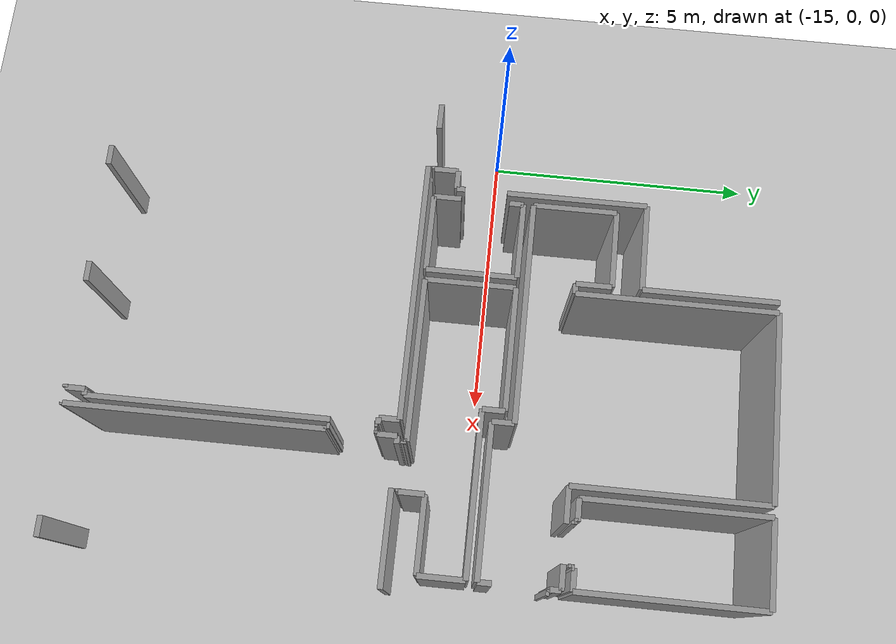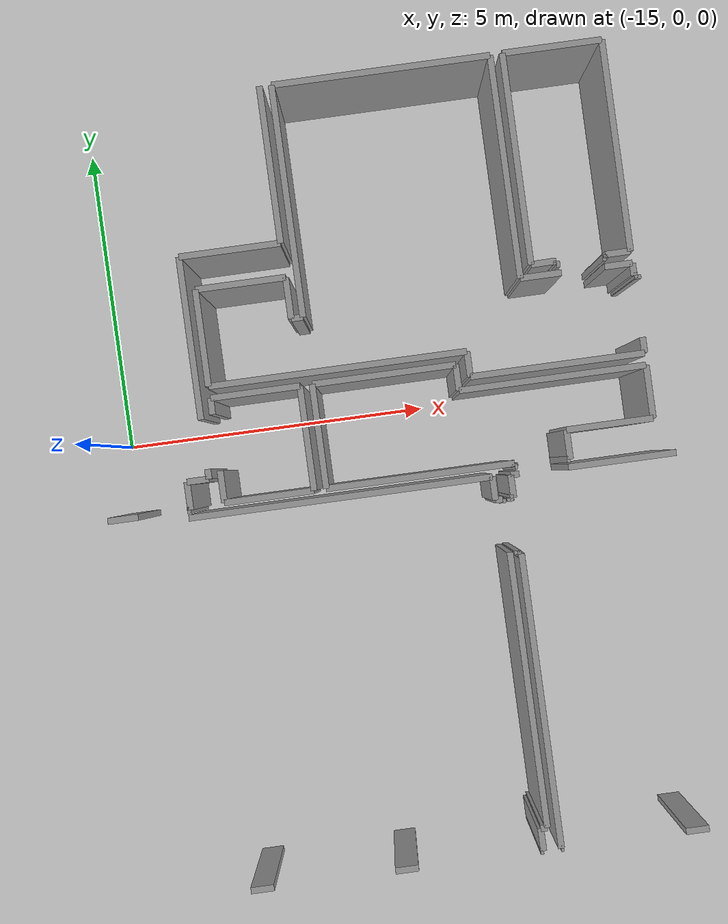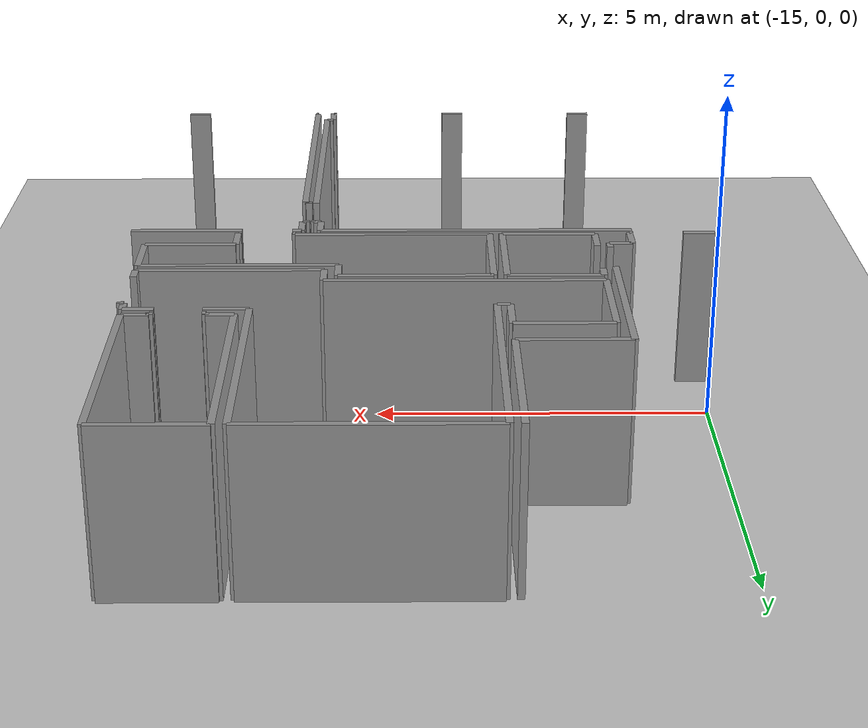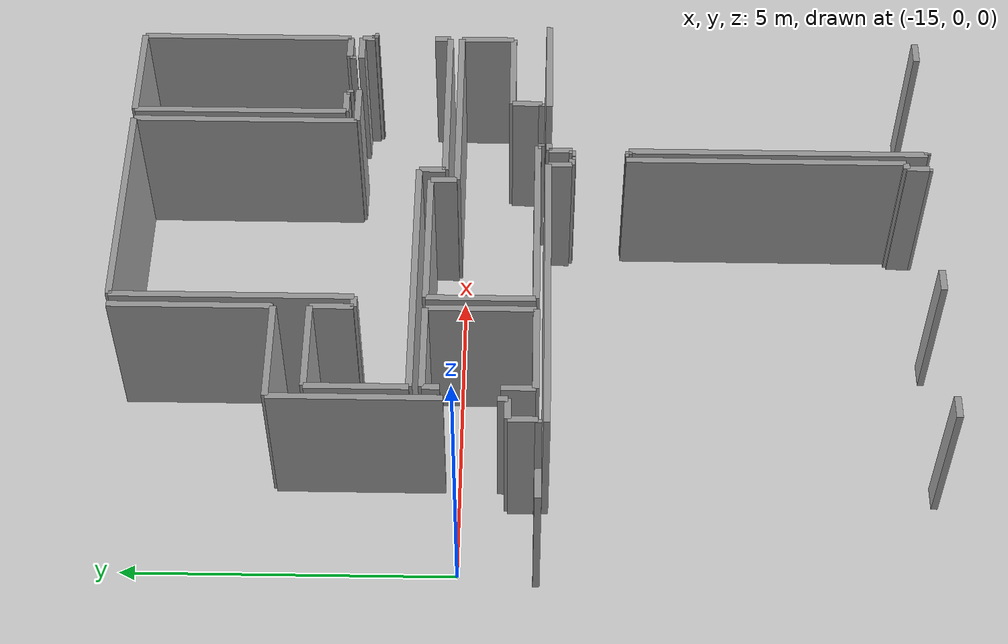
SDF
<sdf version="1.6">
 <world name="default">
  <model name="ground_plane">
   <static>1</static>
   <link name="link">
    <collision name="collision">
     <geometry><plane><normal>0 0 1</normal><size>100 100</size></plane></geometry>
     <surface><friction><ode><mu>100</mu><mu2>50</mu2></ode></friction></surface>
    </collision>
    <visual name="visual">
     <cast_shadows>0</cast_shadows>
     <geometry><plane><normal>0 0 1</normal><size>100 100</size></plane></geometry>
     <material>
      <script><uri>file://media/materials/scripts/gazebo.material</uri><name>Gazebo/Grey</name></script>
     </material>
    </visual>
   </link>
  </model>
  <model name="0510025537_Layout1_PLAN1">
   <static>1</static>
   <link name="Wall_47">
    <collision name="Wall_47_Collision">
     <geometry><box><size>4.76253415518 0.1 2.5</size></box></geometry>
     <pose>2.38126707759 0 1.25 0 0 0</pose>
    </collision>
    <visual name="Wall_47_Visual">
     <pose>2.38126707759 0 1.25 0 0 0</pose>
     <geometry><box><size>4.76253415518 0.1 2.5</size></box></geometry>
     <material>
      <script><uri>file://media/materials/scripts/gazebo.material</uri><name>Gazebo/Grey</name></script>
      <ambient>1 1 1 1</ambient>
     </material>
    </visual>
    <pose>6.46622609138 -6.76220372371 0 0 0 0.0</pose>
   </link>
   <link name="Wall_48">
    <collision name="Wall_48_Collision">
     <geometry><box><size>0.365126771303 0.1 2.5</size></box></geometry>
     <pose>0.182563385652 0 1.25 0 0 0</pose>
    </collision>
    <visual name="Wall_48_Visual">
     <pose>0.182563385652 0 1.25 0 0 0</pose>
     <geometry><box><size>0.365126771303 0.1 2.5</size></box></geometry>
     <material>
      <script><uri>file://media/materials/scripts/gazebo.material</uri><name>Gazebo/Grey</name></script>
      <ambient>1 1 1 1</ambient>
     </material>
    </visual>
    <pose>11.2287602466 -6.76220372371 0 0 0 -1.57079632679</pose>
   </link>
   <link name="Wall_49">
    <collision name="Wall_49_Collision">
     <geometry><box><size>0.112092520811 0.1 2.5</size></box></geometry>
     <pose>0.0560462604054 0 1.25 0 0 0</pose>
    </collision>
    <visual name="Wall_49_Visual">
     <pose>0.0560462604054 0 1.25 0 0 0</pose>
     <geometry><box><size>0.112092520811 0.1 2.5</size></box></geometry>
     <material>
      <script><uri>file://media/materials/scripts/gazebo.material</uri><name>Gazebo/Grey</name></script>
      <ambient>1 1 1 1</ambient>
     </material>
    </visual>
    <pose>11.2287602466 -7.12733049501 0 0 0 0.0</pose>
   </link>
   <link name="Wall_50">
    <collision name="Wall_50_Collision">
     <geometry><box><size>0.0612569104658 0.1 2.5</size></box></geometry>
     <pose>0.0306284552329 0 1.25 0 0 0</pose>
    </collision>
    <visual name="Wall_50_Visual">
     <pose>0.0306284552329 0 1.25 0 0 0</pose>
     <geometry><box><size>0.0612569104658 0.1 2.5</size></box></geometry>
     <material>
      <script><uri>file://media/materials/scripts/gazebo.material</uri><name>Gazebo/Grey</name></script>
      <ambient>1 1 1 1</ambient>
     </material>
    </visual>
    <pose>11.3408527674 -7.12733049501 0 0 0 -1.57079632679</pose>
   </link>
   <link name="Wall_51">
    <collision name="Wall_51_Collision">
     <geometry><box><size>4.32026434517 0.1 2.5</size></box></geometry>
     <pose>2.16013217259 0 1.25 0 0 0</pose>
    </collision>
    <visual name="Wall_51_Visual">
     <pose>2.16013217259 0 1.25 0 0 0</pose>
     <geometry><box><size>4.32026434517 0.1 2.5</size></box></geometry>
     <material>
      <script><uri>file://media/materials/scripts/gazebo.material</uri><name>Gazebo/Grey</name></script>
      <ambient>1 1 1 1</ambient>
     </material>
    </visual>
    <pose>11.3408527674 -7.96039905954 0 0 0 -1.57079632679</pose>
   </link>
   <link name="Wall_52">
    <collision name="Wall_52_Collision">
     <geometry><box><size>0.106373514647 0.1 2.5</size></box></geometry>
     <pose>0.0531867573235 0 1.25 0 0 0</pose>
    </collision>
    <visual name="Wall_52_Visual">
     <pose>0.0531867573235 0 1.25 0 0 0</pose>
     <geometry><box><size>0.106373514647 0.1 2.5</size></box></geometry>
     <material>
      <script><uri>file://media/materials/scripts/gazebo.material</uri><name>Gazebo/Grey</name></script>
      <ambient>1 1 1 1</ambient>
     </material>
    </visual>
    <pose>11.3408527674 -12.2806634047 0 0 0 3.14159265359</pose>
   </link>
   <link name="Wall_53">
    <collision name="Wall_53_Collision">
     <geometry><box><size>0.350384444303 0.1 2.5</size></box></geometry>
     <pose>0.175192222152 0 1.25 0 0 0</pose>
    </collision>
    <visual name="Wall_53_Visual">
     <pose>0.175192222152 0 1.25 0 0 0</pose>
     <geometry><box><size>0.350384444303 0.1 2.5</size></box></geometry>
     <material>
      <script><uri>file://media/materials/scripts/gazebo.material</uri><name>Gazebo/Grey</name></script>
      <ambient>1 1 1 1</ambient>
     </material>
    </visual>
    <pose>11.2344792527 -12.2806634047 0 0 0 -1.57079632679</pose>
   </link>
   <link name="Wall_54">
    <collision name="Wall_54_Collision">
     <geometry><box><size>0.0486750969054 0.1 2.5</size></box></geometry>
     <pose>0.0243375484527 0 1.25 0 0 0</pose>
    </collision>
    <visual name="Wall_54_Visual">
     <pose>0.0243375484527 0 1.25 0 0 0</pose>
     <geometry><box><size>0.0486750969054 0.1 2.5</size></box></geometry>
     <material>
      <script><uri>file://media/materials/scripts/gazebo.material</uri><name>Gazebo/Grey</name></script>
      <ambient>1 1 1 1</ambient>
     </material>
    </visual>
    <pose>11.2344792527 -12.631047849 0 0 0 3.14159265359</pose>
   </link>
   <link name="Wall_55">
    <collision name="Wall_55_Collision">
     <geometry><box><size>0.365444493868 0.1 2.5</size></box></geometry>
     <pose>0.182722246934 0 1.25 0 0 0</pose>
    </collision>
    <visual name="Wall_55_Visual">
     <pose>0.182722246934 0 1.25 0 0 0</pose>
     <geometry><box><size>0.365444493868 0.1 2.5</size></box></geometry>
     <material>
      <script><uri>file://media/materials/scripts/gazebo.material</uri><name>Gazebo/Grey</name></script>
      <ambient>1 1 1 1</ambient>
     </material>
    </visual>
    <pose>9.27451229586 -12.631047849 0 0 0 3.14159265359</pose>
   </link>
   <link name="Wall_56">
    <collision name="Wall_56_Collision">
     <geometry><box><size>0.36353815848 0.1 2.5</size></box></geometry>
     <pose>0.18176907924 0 1.25 0 0 0</pose>
    </collision>
    <visual name="Wall_56_Visual">
     <pose>0.18176907924 0 1.25 0 0 0</pose>
     <geometry><box><size>0.36353815848 0.1 2.5</size></box></geometry>
     <material>
      <script><uri>file://media/materials/scripts/gazebo.material</uri><name>Gazebo/Grey</name></script>
      <ambient>1 1 1 1</ambient>
     </material>
    </visual>
    <pose>7.0048929275 -12.631047849 0 0 0 3.14159265359</pose>
   </link>
   <link name="Wall_58">
    <collision name="Wall_58_Collision">
     <geometry><box><size>1.40223676686 0.1 2.5</size></box></geometry>
     <pose>0.701118383428 0 1.25 0 0 0</pose>
    </collision>
    <visual name="Wall_58_Visual">
     <pose>0.701118383428 0 1.25 0 0 0</pose>
     <geometry><box><size>1.40223676686 0.1 2.5</size></box></geometry>
     <material>
      <script><uri>file://media/materials/scripts/gazebo.material</uri><name>Gazebo/Grey</name></script>
      <ambient>1 1 1 1</ambient>
     </material>
    </visual>
    <pose>7.05051788778 -4.9597000699 0 0 0 0.0</pose>
   </link>
   <link name="Wall_59">
    <collision name="Wall_59_Collision">
     <geometry><box><size>1.64084641291 0.1 2.5</size></box></geometry>
     <pose>0.820423206456 0 1.25 0 0 0</pose>
    </collision>
    <visual name="Wall_59_Visual">
     <pose>0.820423206456 0 1.25 0 0 0</pose>
     <geometry><box><size>1.64084641291 0.1 2.5</size></box></geometry>
     <material>
      <script><uri>file://media/materials/scripts/gazebo.material</uri><name>Gazebo/Grey</name></script>
      <ambient>1 1 1 1</ambient>
     </material>
    </visual>
    <pose>8.45275465464 -4.9597000699 0 0 0 -1.57079632679</pose>
   </link>
   <link name="Wall_60">
    <collision name="Wall_60_Collision">
     <geometry><box><size>1.40617652666 0.1 2.5</size></box></geometry>
     <pose>0.703088263328 0 1.25 0 0 0</pose>
    </collision>
    <visual name="Wall_60_Visual">
     <pose>0.703088263328 0 1.25 0 0 0</pose>
     <geometry><box><size>1.40617652666 0.1 2.5</size></box></geometry>
     <material>
      <script><uri>file://media/materials/scripts/gazebo.material</uri><name>Gazebo/Grey</name></script>
      <ambient>1 1 1 1</ambient>
     </material>
    </visual>
    <pose>8.45275465464 -6.60054648281 0 0 0 3.14159265359</pose>
   </link>
   <link name="Wall_61">
    <collision name="Wall_61_Collision">
     <geometry><box><size>0.503590264981 0.1 2.5</size></box></geometry>
     <pose>0.25179513249 0 1.25 0 0 0</pose>
    </collision>
    <visual name="Wall_61_Visual">
     <pose>0.25179513249 0 1.25 0 0 0</pose>
     <geometry><box><size>0.503590264981 0.1 2.5</size></box></geometry>
     <material>
      <script><uri>file://media/materials/scripts/gazebo.material</uri><name>Gazebo/Grey</name></script>
      <ambient>1 1 1 1</ambient>
     </material>
    </visual>
    <pose>7.04657812798 -6.60054648281 0 0 0 1.57079632679</pose>
   </link>
   <link name="Wall_62">
    <collision name="Wall_62_Collision">
     <geometry><box><size>0.256114691165 0.1 2.5</size></box></geometry>
     <pose>0.128057345582 0 1.25 0 0 0</pose>
    </collision>
    <visual name="Wall_62_Visual">
     <pose>0.128057345582 0 1.25 0 0 0</pose>
     <geometry><box><size>0.256114691165 0.1 2.5</size></box></geometry>
     <material>
      <script><uri>file://media/materials/scripts/gazebo.material</uri><name>Gazebo/Grey</name></script>
      <ambient>1 1 1 1</ambient>
     </material>
    </visual>
    <pose>7.04657812798 -5.21578445701 0 0 0 1.55541292501</pose>
   </link>
   <link name="Wall_70">
    <collision name="Wall_70_Collision">
     <geometry><box><size>2.46053885747 0.1 2.5</size></box></geometry>
     <pose>1.23026942873 0 1.25 0 0 0</pose>
    </collision>
    <visual name="Wall_70_Visual">
     <pose>1.23026942873 0 1.25 0 0 0</pose>
     <geometry><box><size>2.46053885747 0.1 2.5</size></box></geometry>
     <material>
      <script><uri>file://media/materials/scripts/gazebo.material</uri><name>Gazebo/Grey</name></script>
      <ambient>1 1 1 1</ambient>
     </material>
    </visual>
    <pose>8.45485162356 -0.258422825189 0 0 0 -1.57079632679</pose>
   </link>
   <link name="Wall_71">
    <collision name="Wall_71_Collision">
     <geometry><box><size>1.59744551058 0.1 2.5</size></box></geometry>
     <pose>0.79872275529 0 1.25 0 0 0</pose>
    </collision>
    <visual name="Wall_71_Visual">
     <pose>0.79872275529 0 1.25 0 0 0</pose>
     <geometry><box><size>1.59744551058 0.1 2.5</size></box></geometry>
     <material>
      <script><uri>file://media/materials/scripts/gazebo.material</uri><name>Gazebo/Grey</name></script>
      <ambient>1 1 1 1</ambient>
     </material>
    </visual>
    <pose>8.45485162356 -2.71896168266 0 0 0 3.14159265359</pose>
   </link>
   <link name="Wall_72">
    <collision name="Wall_72_Collision">
     <geometry><box><size>2.55413992502 0.1 2.5</size></box></geometry>
     <pose>1.27706996251 0 1.25 0 0 0</pose>
    </collision>
    <visual name="Wall_72_Visual">
     <pose>1.27706996251 0 1.25 0 0 0</pose>
     <geometry><box><size>2.55413992502 0.1 2.5</size></box></geometry>
     <material>
      <script><uri>file://media/materials/scripts/gazebo.material</uri><name>Gazebo/Grey</name></script>
      <ambient>1 1 1 1</ambient>
     </material>
    </visual>
    <pose>6.85740611298 -2.71896168266 0 0 0 -1.57079632679</pose>
   </link>
   <link name="Wall_73">
    <collision name="Wall_73_Collision">
     <geometry><box><size>0.153650632268 0.1 2.5</size></box></geometry>
     <pose>0.076825316134 0 1.25 0 0 0</pose>
    </collision>
    <visual name="Wall_73_Visual">
     <pose>0.076825316134 0 1.25 0 0 0</pose>
     <geometry><box><size>0.153650632268 0.1 2.5</size></box></geometry>
     <material>
      <script><uri>file://media/materials/scripts/gazebo.material</uri><name>Gazebo/Grey</name></script>
      <ambient>1 1 1 1</ambient>
     </material>
    </visual>
    <pose>6.85740611298 -6.04789985385 0 0 0 -1.57079632679</pose>
   </link>
   <link name="Wall_74">
    <collision name="Wall_74_Collision">
     <geometry><box><size>0.346762407066 0.1 2.5</size></box></geometry>
     <pose>0.173381203533 0 1.25 0 0 0</pose>
    </collision>
    <visual name="Wall_74_Visual">
     <pose>0.173381203533 0 1.25 0 0 0</pose>
     <geometry><box><size>0.346762407066 0.1 2.5</size></box></geometry>
     <material>
      <script><uri>file://media/materials/scripts/gazebo.material</uri><name>Gazebo/Grey</name></script>
      <ambient>1 1 1 1</ambient>
     </material>
    </visual>
    <pose>6.85740611298 -6.20155048612 0 0 0 3.14159265359</pose>
   </link>
   <link name="Wall_75">
    <collision name="Wall_75_Collision">
     <geometry><box><size>0.439982207536 0.1 2.5</size></box></geometry>
     <pose>0.219991103768 0 1.25 0 0 0</pose>
    </collision>
    <visual name="Wall_75_Visual">
     <pose>0.219991103768 0 1.25 0 0 0</pose>
     <geometry><box><size>0.439982207536 0.1 2.5</size></box></geometry>
     <material>
      <script><uri>file://media/materials/scripts/gazebo.material</uri><name>Gazebo/Grey</name></script>
      <ambient>1 1 1 1</ambient>
     </material>
    </visual>
    <pose>6.51064370592 -6.20155048612 0 0 0 -1.57079632679</pose>
   </link>
   <link name="Wall_76">
    <collision name="Wall_76_Collision">
     <geometry><box><size>0.0542670140433 0.1 2.5</size></box></geometry>
     <pose>0.0271335070217 0 1.25 0 0 0</pose>
    </collision>
    <visual name="Wall_76_Visual">
     <pose>0.0271335070217 0 1.25 0 0 0</pose>
     <geometry><box><size>0.0542670140433 0.1 2.5</size></box></geometry>
     <material>
      <script><uri>file://media/materials/scripts/gazebo.material</uri><name>Gazebo/Grey</name></script>
      <ambient>1 1 1 1</ambient>
     </material>
    </visual>
    <pose>6.51064370592 -6.64153269365 0 0 0 3.14159265359</pose>
   </link>
   <link name="Wall_77">
    <collision name="Wall_77_Collision">
     <geometry><box><size>0.479062082989 0.1 2.5</size></box></geometry>
     <pose>0.239531041495 0 1.25 0 0 0</pose>
    </collision>
    <visual name="Wall_77_Visual">
     <pose>0.239531041495 0 1.25 0 0 0</pose>
     <geometry><box><size>0.479062082989 0.1 2.5</size></box></geometry>
     <material>
      <script><uri>file://media/materials/scripts/gazebo.material</uri><name>Gazebo/Grey</name></script>
      <ambient>1 1 1 1</ambient>
     </material>
    </visual>
    <pose>5.68780580797 -6.64153269365 0 0 0 3.14159265359</pose>
   </link>
   <link name="Wall_91">
    <collision name="Wall_91_Collision">
     <geometry><box><size>4.61911418949 0.1 2.5</size></box></geometry>
     <pose>2.30955709474 0 1.25 0 0 0</pose>
    </collision>
    <visual name="Wall_91_Visual">
     <pose>2.30955709474 0 1.25 0 0 0</pose>
     <geometry><box><size>4.61911418949 0.1 2.5</size></box></geometry>
     <material>
      <script><uri>file://media/materials/scripts/gazebo.material</uri><name>Gazebo/Grey</name></script>
      <ambient>1 1 1 1</ambient>
     </material>
    </visual>
    <pose>11.5152824554 -12.6279977124 0 0 0 1.57079632679</pose>
   </link>
   <link name="Wall_92">
    <collision name="Wall_92_Collision">
     <geometry><box><size>0.0587786744615 0.1 2.5</size></box></geometry>
     <pose>0.0293893372307 0 1.25 0 0 0</pose>
    </collision>
    <visual name="Wall_92_Visual">
     <pose>0.0293893372307 0 1.25 0 0 0</pose>
     <geometry><box><size>0.0587786744615 0.1 2.5</size></box></geometry>
     <material>
      <script><uri>file://media/materials/scripts/gazebo.material</uri><name>Gazebo/Grey</name></script>
      <ambient>1 1 1 1</ambient>
     </material>
    </visual>
    <pose>11.5152824554 -8.00888352291 0 0 0 3.14159265359</pose>
   </link>
   <link name="Wall_93">
    <collision name="Wall_93_Collision">
     <geometry><box><size>0.0582067738451 0.1 2.5</size></box></geometry>
     <pose>0.0291033869225 0 1.25 0 0 0</pose>
    </collision>
    <visual name="Wall_93_Visual">
     <pose>0.0291033869225 0 1.25 0 0 0</pose>
     <geometry><box><size>0.0582067738451 0.1 2.5</size></box></geometry>
     <material>
      <script><uri>file://media/materials/scripts/gazebo.material</uri><name>Gazebo/Grey</name></script>
      <ambient>1 1 1 1</ambient>
     </material>
    </visual>
    <pose>11.4565037809 -8.00888352291 0 0 0 1.57079632679</pose>
   </link>
   <link name="Wall_94">
    <collision name="Wall_94_Collision">
     <geometry><box><size>0.0515981445002 0.1 2.5</size></box></geometry>
     <pose>0.0257990722501 0 1.25 0 0 0</pose>
    </collision>
    <visual name="Wall_94_Visual">
     <pose>0.0257990722501 0 1.25 0 0 0</pose>
     <geometry><box><size>0.0515981445002 0.1 2.5</size></box></geometry>
     <material>
      <script><uri>file://media/materials/scripts/gazebo.material</uri><name>Gazebo/Grey</name></script>
      <ambient>1 1 1 1</ambient>
     </material>
    </visual>
    <pose>11.4565037809 -7.17988180721 0 0 0 1.57079632679</pose>
   </link>
   <link name="Wall_95">
    <collision name="Wall_95_Collision">
     <geometry><box><size>0.0583338628709 0.1 2.5</size></box></geometry>
     <pose>0.0291669314355 0 1.25 0 0 0</pose>
    </collision>
    <visual name="Wall_95_Visual">
     <pose>0.0291669314355 0 1.25 0 0 0</pose>
     <geometry><box><size>0.0583338628709 0.1 2.5</size></box></geometry>
     <material>
      <script><uri>file://media/materials/scripts/gazebo.material</uri><name>Gazebo/Grey</name></script>
      <ambient>1 1 1 1</ambient>
     </material>
    </visual>
    <pose>11.4565037809 -7.12828366271 0 0 0 0.0</pose>
   </link>
   <link name="Wall_96">
    <collision name="Wall_96_Collision">
     <geometry><box><size>0.355912816928 0.1 2.5</size></box></geometry>
     <pose>0.177956408464 0 1.25 0 0 0</pose>
    </collision>
    <visual name="Wall_96_Visual">
     <pose>0.177956408464 0 1.25 0 0 0</pose>
     <geometry><box><size>0.355912816928 0.1 2.5</size></box></geometry>
     <material>
      <script><uri>file://media/materials/scripts/gazebo.material</uri><name>Gazebo/Grey</name></script>
      <ambient>1 1 1 1</ambient>
     </material>
    </visual>
    <pose>11.5148376438 -7.12828366271 0 0 0 1.57079632679</pose>
   </link>
   <link name="Wall_97">
    <collision name="Wall_97_Collision">
     <geometry><box><size>0.133888288746 0.1 2.5</size></box></geometry>
     <pose>0.0669441443731 0 1.25 0 0 0</pose>
    </collision>
    <visual name="Wall_97_Visual">
     <pose>0.0669441443731 0 1.25 0 0 0</pose>
     <geometry><box><size>0.133888288746 0.1 2.5</size></box></geometry>
     <material>
      <script><uri>file://media/materials/scripts/gazebo.material</uri><name>Gazebo/Grey</name></script>
      <ambient>1 1 1 1</ambient>
     </material>
    </visual>
    <pose>11.5148376438 -6.77237084578 0 0 0 0.0</pose>
   </link>
   <link name="Wall_98">
    <collision name="Wall_98_Collision">
     <geometry><box><size>1.69504988244 0.1 2.5</size></box></geometry>
     <pose>0.847524941221 0 1.25 0 0 0</pose>
    </collision>
    <visual name="Wall_98_Visual">
     <pose>0.847524941221 0 1.25 0 0 0</pose>
     <geometry><box><size>1.69504988244 0.1 2.5</size></box></geometry>
     <material>
      <script><uri>file://media/materials/scripts/gazebo.material</uri><name>Gazebo/Grey</name></script>
      <ambient>1 1 1 1</ambient>
     </material>
    </visual>
    <pose>12.4183770731 -6.77237084578 0 0 0 0.0</pose>
   </link>
   <link name="Wall_113">
    <collision name="Wall_113_Collision">
     <geometry><box><size>0.364872593252 0.1 2.5</size></box></geometry>
     <pose>0.182436296626 0 1.25 0 0 0</pose>
    </collision>
    <visual name="Wall_113_Visual">
     <pose>0.182436296626 0 1.25 0 0 0</pose>
     <geometry><box><size>0.364872593252 0.1 2.5</size></box></geometry>
     <material>
      <script><uri>file://media/materials/scripts/gazebo.material</uri><name>Gazebo/Grey</name></script>
      <ambient>1 1 1 1</ambient>
     </material>
    </visual>
    <pose>13.8342759103 -12.63092076 0 0 0 3.14159265359</pose>
   </link>
   <link name="Wall_114">
    <collision name="Wall_114_Collision">
     <geometry><box><size>0.0369082044918 0.1 2.5</size></box></geometry>
     <pose>0.0184541022459 0 1.25 0 0 0</pose>
    </collision>
    <visual name="Wall_114_Visual">
     <pose>0.0184541022459 0 1.25 0 0 0</pose>
     <geometry><box><size>0.0369082044918 0.1 2.5</size></box></geometry>
     <material>
      <script><uri>file://media/materials/scripts/gazebo.material</uri><name>Gazebo/Grey</name></script>
      <ambient>1 1 1 1</ambient>
     </material>
    </visual>
    <pose>11.5520747283 -12.63092076 0 0 0 3.06231185434</pose>
   </link>
   <link name="Wall_115">
    <collision name="Wall_115_Collision">
     <geometry><box><size>1.63747855373 0.1 2.5</size></box></geometry>
     <pose>0.818739276863 0 1.25 0 0 0</pose>
    </collision>
    <visual name="Wall_115_Visual">
     <pose>0.818739276863 0 1.25 0 0 0</pose>
     <geometry><box><size>1.63747855373 0.1 2.5</size></box></geometry>
     <material>
      <script><uri>file://media/materials/scripts/gazebo.material</uri><name>Gazebo/Grey</name></script>
      <ambient>1 1 1 1</ambient>
     </material>
    </visual>
    <pose>8.64459553918 -6.59565355532 0 0 0 1.57079632679</pose>
   </link>
   <link name="Wall_116">
    <collision name="Wall_116_Collision">
     <geometry><box><size>2.25360615111 0.1 2.5</size></box></geometry>
     <pose>1.12680307555 0 1.25 0 0 0</pose>
    </collision>
    <visual name="Wall_116_Visual">
     <pose>1.12680307555 0 1.25 0 0 0</pose>
     <geometry><box><size>2.25360615111 0.1 2.5</size></box></geometry>
     <material>
      <script><uri>file://media/materials/scripts/gazebo.material</uri><name>Gazebo/Grey</name></script>
      <ambient>1 1 1 1</ambient>
     </material>
    </visual>
    <pose>8.64459553918 -4.95817500159 0 0 0 0.0</pose>
   </link>
   <link name="Wall_117">
    <collision name="Wall_117_Collision">
     <geometry><box><size>0.405223358963 0.1 2.5</size></box></geometry>
     <pose>0.202611679481 0 1.25 0 0 0</pose>
    </collision>
    <visual name="Wall_117_Visual">
     <pose>0.202611679481 0 1.25 0 0 0</pose>
     <geometry><box><size>0.405223358963 0.1 2.5</size></box></geometry>
     <material>
      <script><uri>file://media/materials/scripts/gazebo.material</uri><name>Gazebo/Grey</name></script>
      <ambient>1 1 1 1</ambient>
     </material>
    </visual>
    <pose>10.8982016903 -4.95817500159 0 0 0 -1.57079632679</pose>
   </link>
   <link name="Wall_118">
    <collision name="Wall_118_Collision">
     <geometry><box><size>2.93226154922 0.1 2.5</size></box></geometry>
     <pose>1.46613077461 0 1.25 0 0 0</pose>
    </collision>
    <visual name="Wall_118_Visual">
     <pose>1.46613077461 0 1.25 0 0 0</pose>
     <geometry><box><size>2.93226154922 0.1 2.5</size></box></geometry>
     <material>
      <script><uri>file://media/materials/scripts/gazebo.material</uri><name>Gazebo/Grey</name></script>
      <ambient>1 1 1 1</ambient>
     </material>
    </visual>
    <pose>10.8982016903 -5.36339836055 0 0 0 0.0</pose>
   </link>
   <link name="Wall_119">
    <collision name="Wall_119_Collision">
     <geometry><box><size>0.83198830781 0.1 2.5</size></box></geometry>
     <pose>0.415994153905 0 1.25 0 0 0</pose>
    </collision>
    <visual name="Wall_119_Visual">
     <pose>0.415994153905 0 1.25 0 0 0</pose>
     <geometry><box><size>0.83198830781 0.1 2.5</size></box></geometry>
     <material>
      <script><uri>file://media/materials/scripts/gazebo.material</uri><name>Gazebo/Grey</name></script>
      <ambient>1 1 1 1</ambient>
     </material>
    </visual>
    <pose>13.8304632395 -5.36339836055 0 0 0 -1.57079632679</pose>
   </link>
   <link name="Wall_120">
    <collision name="Wall_120_Collision">
     <geometry><box><size>1.36233081273 0.1 2.5</size></box></geometry>
     <pose>0.681165406367 0 1.25 0 0 0</pose>
    </collision>
    <visual name="Wall_120_Visual">
     <pose>0.681165406367 0 1.25 0 0 0</pose>
     <geometry><box><size>1.36233081273 0.1 2.5</size></box></geometry>
     <material>
      <script><uri>file://media/materials/scripts/gazebo.material</uri><name>Gazebo/Grey</name></script>
      <ambient>1 1 1 1</ambient>
     </material>
    </visual>
    <pose>13.8304632395 -6.19538666836 0 0 0 3.14159265359</pose>
   </link>
   <link name="Wall_121">
    <collision name="Wall_121_Collision">
     <geometry><box><size>0.458854927877 0.1 2.5</size></box></geometry>
     <pose>0.229427463938 0 1.25 0 0 0</pose>
    </collision>
    <visual name="Wall_121_Visual">
     <pose>0.229427463938 0 1.25 0 0 0</pose>
     <geometry><box><size>0.458854927877 0.1 2.5</size></box></geometry>
     <material>
      <script><uri>file://media/materials/scripts/gazebo.material</uri><name>Gazebo/Grey</name></script>
      <ambient>1 1 1 1</ambient>
     </material>
    </visual>
    <pose>12.4681324268 -6.19538666836 0 0 0 -1.57079632679</pose>
   </link>
   <link name="Wall_122">
    <collision name="Wall_122_Collision">
     <geometry><box><size>0.053695113427 0.1 2.5</size></box></geometry>
     <pose>0.0268475567135 0 1.25 0 0 0</pose>
    </collision>
    <visual name="Wall_122_Visual">
     <pose>0.0268475567135 0 1.25 0 0 0</pose>
     <geometry><box><size>0.053695113427 0.1 2.5</size></box></geometry>
     <material>
      <script><uri>file://media/materials/scripts/gazebo.material</uri><name>Gazebo/Grey</name></script>
      <ambient>1 1 1 1</ambient>
     </material>
    </visual>
    <pose>12.4681324268 -6.65424159624 0 0 0 3.14159265359</pose>
   </link>
   <link name="Wall_123">
    <collision name="Wall_123_Collision">
     <geometry><box><size>0.0399694986338 0.1 2.5</size></box></geometry>
     <pose>0.0199847493169 0 1.25 0 0 0</pose>
    </collision>
    <visual name="Wall_123_Visual">
     <pose>0.0199847493169 0 1.25 0 0 0</pose>
     <geometry><box><size>0.0399694986338 0.1 2.5</size></box></geometry>
     <material>
      <script><uri>file://media/materials/scripts/gazebo.material</uri><name>Gazebo/Grey</name></script>
      <ambient>1 1 1 1</ambient>
     </material>
    </visual>
    <pose>11.6395119781 -6.65424159624 0 0 0 3.14159265359</pose>
   </link>
   <link name="Wall_124">
    <collision name="Wall_124_Collision">
     <geometry><box><size>0.0537586579399 0.1 2.5</size></box></geometry>
     <pose>0.0268793289699 0 1.25 0 0 0</pose>
    </collision>
    <visual name="Wall_124_Visual">
     <pose>0.0268793289699 0 1.25 0 0 0</pose>
     <geometry><box><size>0.0537586579399 0.1 2.5</size></box></geometry>
     <material>
      <script><uri>file://media/materials/scripts/gazebo.material</uri><name>Gazebo/Grey</name></script>
      <ambient>1 1 1 1</ambient>
     </material>
    </visual>
    <pose>11.5995424795 -6.65424159624 0 0 0 1.57079632679</pose>
   </link>
   <link name="Wall_125">
    <collision name="Wall_125_Collision">
     <geometry><box><size>2.95495088675 0.1 2.5</size></box></geometry>
     <pose>1.47747544338 0 1.25 0 0 0</pose>
    </collision>
    <visual name="Wall_125_Visual">
     <pose>1.47747544338 0 1.25 0 0 0</pose>
     <geometry><box><size>2.95495088675 0.1 2.5</size></box></geometry>
     <material>
      <script><uri>file://media/materials/scripts/gazebo.material</uri><name>Gazebo/Grey</name></script>
      <ambient>1 1 1 1</ambient>
     </material>
    </visual>
    <pose>11.5995424795 -6.6004829383 0 0 0 3.13995831674</pose>
   </link>
   <link name="Wall_142">
    <collision name="Wall_142_Collision">
     <geometry><box><size>3.31571455805 0.1 2.5</size></box></geometry>
     <pose>1.65785727902 0 1.25 0 0 0</pose>
    </collision>
    <visual name="Wall_142_Visual">
     <pose>1.65785727902 0 1.25 0 0 0</pose>
     <geometry><box><size>3.31571455805 0.1 2.5</size></box></geometry>
     <material>
      <script><uri>file://media/materials/scripts/gazebo.material</uri><name>Gazebo/Grey</name></script>
      <ambient>1 1 1 1</ambient>
     </material>
    </visual>
    <pose>12.2687932897 -3.57652665692 0 0 0 1.57079632679</pose>
   </link>
   <link name="Wall_143">
    <collision name="Wall_143_Collision">
     <geometry><box><size>1.5616699498 0.1 2.5</size></box></geometry>
     <pose>0.7808349749 0 1.25 0 0 0</pose>
    </collision>
    <visual name="Wall_143_Visual">
     <pose>0.7808349749 0 1.25 0 0 0</pose>
     <geometry><box><size>1.5616699498 0.1 2.5</size></box></geometry>
     <material>
      <script><uri>file://media/materials/scripts/gazebo.material</uri><name>Gazebo/Grey</name></script>
      <ambient>1 1 1 1</ambient>
     </material>
    </visual>
    <pose>12.2687932897 -0.260812098875 0 0 0 0.0</pose>
   </link>
   <link name="Wall_144">
    <collision name="Wall_144_Collision">
     <geometry><box><size>3.31495202389 0.1 2.5</size></box></geometry>
     <pose>1.65747601195 0 1.25 0 0 0</pose>
    </collision>
    <visual name="Wall_144_Visual">
     <pose>1.65747601195 0 1.25 0 0 0</pose>
     <geometry><box><size>3.31495202389 0.1 2.5</size></box></geometry>
     <material>
      <script><uri>file://media/materials/scripts/gazebo.material</uri><name>Gazebo/Grey</name></script>
      <ambient>1 1 1 1</ambient>
     </material>
    </visual>
    <pose>13.8304632395 -0.260812098875 0 0 0 -1.57079632679</pose>
   </link>
   <link name="Wall_145">
    <collision name="Wall_145_Collision">
     <geometry><box><size>0.39041748745 0.1 2.5</size></box></geometry>
     <pose>0.195208743725 0 1.25 0 0 0</pose>
    </collision>
    <visual name="Wall_145_Visual">
     <pose>0.195208743725 0 1.25 0 0 0</pose>
     <geometry><box><size>0.39041748745 0.1 2.5</size></box></geometry>
     <material>
      <script><uri>file://media/materials/scripts/gazebo.material</uri><name>Gazebo/Grey</name></script>
      <ambient>1 1 1 1</ambient>
     </material>
    </visual>
    <pose>13.8304632395 -3.57576412277 0 0 0 3.14159265359</pose>
   </link>
   <link name="Wall_146">
    <collision name="Wall_146_Collision">
     <geometry><box><size>0.0505814322933 0.1 2.5</size></box></geometry>
     <pose>0.0252907161467 0 1.25 0 0 0</pose>
    </collision>
    <visual name="Wall_146_Visual">
     <pose>0.0252907161467 0 1.25 0 0 0</pose>
     <geometry><box><size>0.0505814322933 0.1 2.5</size></box></geometry>
     <material>
      <script><uri>file://media/materials/scripts/gazebo.material</uri><name>Gazebo/Grey</name></script>
      <ambient>1 1 1 1</ambient>
     </material>
    </visual>
    <pose>13.440045752 -3.57576412277 0 0 0 -1.57079632679</pose>
   </link>
   <link name="Wall_147">
    <collision name="Wall_147_Collision">
     <geometry><box><size>0.0559827158925 0.1 2.5</size></box></geometry>
     <pose>0.0279913579462 0 1.25 0 0 0</pose>
    </collision>
    <visual name="Wall_147_Visual">
     <pose>0.0279913579462 0 1.25 0 0 0</pose>
     <geometry><box><size>0.0559827158925 0.1 2.5</size></box></geometry>
     <material>
      <script><uri>file://media/materials/scripts/gazebo.material</uri><name>Gazebo/Grey</name></script>
      <ambient>1 1 1 1</ambient>
     </material>
    </visual>
    <pose>13.440045752 -3.62634555506 0 0 0 3.14159265359</pose>
   </link>
   <link name="Wall_148">
    <collision name="Wall_148_Collision">
     <geometry><box><size>0.0546482811209 0.1 2.5</size></box></geometry>
     <pose>0.0273241405605 0 1.25 0 0 0</pose>
    </collision>
    <visual name="Wall_148_Visual">
     <pose>0.0273241405605 0 1.25 0 0 0</pose>
     <geometry><box><size>0.0546482811209 0.1 2.5</size></box></geometry>
     <material>
      <script><uri>file://media/materials/scripts/gazebo.material</uri><name>Gazebo/Grey</name></script>
      <ambient>1 1 1 1</ambient>
     </material>
    </visual>
    <pose>12.71754464 -3.62634555506 0 0 0 3.14159265359</pose>
   </link>
   <link name="Wall_149">
    <collision name="Wall_149_Collision">
     <geometry><box><size>0.0546482811209 0.1 2.5</size></box></geometry>
     <pose>0.0273241405605 0 1.25 0 0 0</pose>
    </collision>
    <visual name="Wall_149_Visual">
     <pose>0.0273241405605 0 1.25 0 0 0</pose>
     <geometry><box><size>0.0546482811209 0.1 2.5</size></box></geometry>
     <material>
      <script><uri>file://media/materials/scripts/gazebo.material</uri><name>Gazebo/Grey</name></script>
      <ambient>1 1 1 1</ambient>
     </material>
    </visual>
    <pose>12.6628963589 -3.62634555506 0 0 0 1.57079632679</pose>
   </link>
   <link name="Wall_150">
    <collision name="Wall_150_Collision">
     <geometry><box><size>0.394132657988 0.1 2.5</size></box></geometry>
     <pose>0.197066328994 0 1.25 0 0 0</pose>
    </collision>
    <visual name="Wall_150_Visual">
     <pose>0.197066328994 0 1.25 0 0 0</pose>
     <geometry><box><size>0.394132657988 0.1 2.5</size></box></geometry>
     <material>
      <script><uri>file://media/materials/scripts/gazebo.material</uri><name>Gazebo/Grey</name></script>
      <ambient>1 1 1 1</ambient>
     </material>
    </visual>
    <pose>12.6628963589 -3.57169727394 0 0 0 -3.12933915533</pose>
   </link>
   <link name="Wall_151">
    <collision name="Wall_151_Collision">
     <geometry><box><size>1.51922221516 0.1 2.5</size></box></geometry>
     <pose>0.759611107581 0 1.25 0 0 0</pose>
    </collision>
    <visual name="Wall_151_Visual">
     <pose>0.759611107581 0 1.25 0 0 0</pose>
     <geometry><box><size>1.51922221516 0.1 2.5</size></box></geometry>
     <material>
      <script><uri>file://media/materials/scripts/gazebo.material</uri><name>Gazebo/Grey</name></script>
      <ambient>1 1 1 1</ambient>
     </material>
    </visual>
    <pose>7.04193937853 -4.77567516045 0 0 0 1.57079632679</pose>
   </link>
   <link name="Wall_152">
    <collision name="Wall_152_Collision">
     <geometry><box><size>1.41799580606 0.1 2.5</size></box></geometry>
     <pose>0.708997903031 0 1.25 0 0 0</pose>
    </collision>
    <visual name="Wall_152_Visual">
     <pose>0.708997903031 0 1.25 0 0 0</pose>
     <geometry><box><size>1.41799580606 0.1 2.5</size></box></geometry>
     <material>
      <script><uri>file://media/materials/scripts/gazebo.material</uri><name>Gazebo/Grey</name></script>
      <ambient>1 1 1 1</ambient>
     </material>
    </visual>
    <pose>7.04193937853 -3.25645294529 0 0 0 0.0</pose>
   </link>
   <link name="Wall_153">
    <collision name="Wall_153_Collision">
     <geometry><box><size>0.647709220309 0.1 2.5</size></box></geometry>
     <pose>0.323854610154 0 1.25 0 0 0</pose>
    </collision>
    <visual name="Wall_153_Visual">
     <pose>0.323854610154 0 1.25 0 0 0</pose>
     <geometry><box><size>0.647709220309 0.1 2.5</size></box></geometry>
     <material>
      <script><uri>file://media/materials/scripts/gazebo.material</uri><name>Gazebo/Grey</name></script>
      <ambient>1 1 1 1</ambient>
     </material>
    </visual>
    <pose>8.4599351846 -3.25645294529 0 0 0 -1.57079632679</pose>
   </link>
   <link name="Wall_154">
    <collision name="Wall_154_Collision">
     <geometry><box><size>0.183961364936 0.1 2.5</size></box></geometry>
     <pose>0.0919806824681 0 1.25 0 0 0</pose>
    </collision>
    <visual name="Wall_154_Visual">
     <pose>0.0919806824681 0 1.25 0 0 0</pose>
     <geometry><box><size>0.183961364936 0.1 2.5</size></box></geometry>
     <material>
      <script><uri>file://media/materials/scripts/gazebo.material</uri><name>Gazebo/Grey</name></script>
      <ambient>1 1 1 1</ambient>
     </material>
    </visual>
    <pose>8.4599351846 -3.9041621656 0 0 0 0.0</pose>
   </link>
   <link name="Wall_155">
    <collision name="Wall_155_Collision">
     <geometry><box><size>3.63618860011 0.1 2.5</size></box></geometry>
     <pose>1.81809430006 0 1.25 0 0 0</pose>
    </collision>
    <visual name="Wall_155_Visual">
     <pose>1.81809430006 0 1.25 0 0 0</pose>
     <geometry><box><size>3.63618860011 0.1 2.5</size></box></geometry>
     <material>
      <script><uri>file://media/materials/scripts/gazebo.material</uri><name>Gazebo/Grey</name></script>
      <ambient>1 1 1 1</ambient>
     </material>
    </visual>
    <pose>8.64389654953 -3.9041621656 0 0 0 1.57079632679</pose>
   </link>
   <link name="Wall_156">
    <collision name="Wall_156_Collision">
     <geometry><box><size>3.43280167758 0.1 2.5</size></box></geometry>
     <pose>1.71640083879 0 1.25 0 0 0</pose>
    </collision>
    <visual name="Wall_156_Visual">
     <pose>1.71640083879 0 1.25 0 0 0</pose>
     <geometry><box><size>3.43280167758 0.1 2.5</size></box></geometry>
     <material>
      <script><uri>file://media/materials/scripts/gazebo.material</uri><name>Gazebo/Grey</name></script>
      <ambient>1 1 1 1</ambient>
     </material>
    </visual>
    <pose>8.64389654953 -0.267973565483 0 0 0 0.0</pose>
   </link>
   <link name="Wall_157">
    <collision name="Wall_157_Collision">
     <geometry><box><size>3.49492914787 0.1 2.5</size></box></geometry>
     <pose>1.74746457393 0 1.25 0 0 0</pose>
    </collision>
    <visual name="Wall_157_Visual">
     <pose>1.74746457393 0 1.25 0 0 0</pose>
     <geometry><box><size>3.49492914787 0.1 2.5</size></box></geometry>
     <material>
      <script><uri>file://media/materials/scripts/gazebo.material</uri><name>Gazebo/Grey</name></script>
      <ambient>1 1 1 1</ambient>
     </material>
    </visual>
    <pose>12.0766982271 -0.267973565483 0 0 0 -1.57079632679</pose>
   </link>
   <link name="Wall_158">
    <collision name="Wall_158_Collision">
     <geometry><box><size>0.644976806253 0.1 2.5</size></box></geometry>
     <pose>0.322488403126 0 1.25 0 0 0</pose>
    </collision>
    <visual name="Wall_158_Visual">
     <pose>0.322488403126 0 1.25 0 0 0</pose>
     <geometry><box><size>0.644976806253 0.1 2.5</size></box></geometry>
     <material>
      <script><uri>file://media/materials/scripts/gazebo.material</uri><name>Gazebo/Grey</name></script>
      <ambient>1 1 1 1</ambient>
     </material>
    </visual>
    <pose>12.0766982271 -3.76290271335 0 0 0 0.0</pose>
   </link>
   <link name="Wall_159">
    <collision name="Wall_159_Collision">
     <geometry><box><size>0.437186248967 0.1 2.5</size></box></geometry>
     <pose>0.218593124484 0 1.25 0 0 0</pose>
    </collision>
    <visual name="Wall_159_Visual">
     <pose>0.218593124484 0 1.25 0 0 0</pose>
     <geometry><box><size>0.437186248967 0.1 2.5</size></box></geometry>
     <material>
      <script><uri>file://media/materials/scripts/gazebo.material</uri><name>Gazebo/Grey</name></script>
      <ambient>1 1 1 1</ambient>
     </material>
    </visual>
    <pose>13.3977251064 -3.76290271335 0 0 0 0.0</pose>
   </link>
   <link name="Wall_160">
    <collision name="Wall_160_Collision">
     <geometry><box><size>0.195907733367 0.1 2.5</size></box></geometry>
     <pose>0.0979538666836 0 1.25 0 0 0</pose>
    </collision>
    <visual name="Wall_160_Visual">
     <pose>0.0979538666836 0 1.25 0 0 0</pose>
     <geometry><box><size>0.195907733367 0.1 2.5</size></box></geometry>
     <material>
      <script><uri>file://media/materials/scripts/gazebo.material</uri><name>Gazebo/Grey</name></script>
      <ambient>1 1 1 1</ambient>
     </material>
    </visual>
    <pose>13.8349113554 -3.76290271335 0 0 0 -1.57079632679</pose>
   </link>
   <link name="Wall_161">
    <collision name="Wall_161_Collision">
     <geometry><box><size>0.0549024591726 0.1 2.5</size></box></geometry>
     <pose>0.0274512295863 0 1.25 0 0 0</pose>
    </collision>
    <visual name="Wall_161_Visual">
     <pose>0.0274512295863 0 1.25 0 0 0</pose>
     <geometry><box><size>0.0549024591726 0.1 2.5</size></box></geometry>
     <material>
      <script><uri>file://media/materials/scripts/gazebo.material</uri><name>Gazebo/Grey</name></script>
      <ambient>1 1 1 1</ambient>
     </material>
    </visual>
    <pose>13.8349113554 -3.95881044672 0 0 0 0.0</pose>
   </link>
   <link name="Wall_162">
    <collision name="Wall_162_Collision">
     <geometry><box><size>0.0620829891339 0.1 2.5</size></box></geometry>
     <pose>0.0310414945669 0 1.25 0 0 0</pose>
    </collision>
    <visual name="Wall_162_Visual">
     <pose>0.0310414945669 0 1.25 0 0 0</pose>
     <geometry><box><size>0.0620829891339 0.1 2.5</size></box></geometry>
     <material>
      <script><uri>file://media/materials/scripts/gazebo.material</uri><name>Gazebo/Grey</name></script>
      <ambient>1 1 1 1</ambient>
     </material>
    </visual>
    <pose>13.8898138146 -3.95881044672 0 0 0 -1.57079632679</pose>
   </link>
   <link name="Wall_165">
    <collision name="Wall_165_Collision">
     <geometry><box><size>0.246298532122 0.1 2.5</size></box></geometry>
     <pose>0.123149266061 0 1.25 0 0 0</pose>
    </collision>
    <visual name="Wall_165_Visual">
     <pose>0.123149266061 0 1.25 0 0 0</pose>
     <geometry><box><size>0.246298532122 0.1 2.5</size></box></geometry>
     <material>
      <script><uri>file://media/materials/scripts/gazebo.material</uri><name>Gazebo/Grey</name></script>
      <ambient>1 1 1 1</ambient>
     </material>
    </visual>
    <pose>13.8355468005 -4.92843616954 0 0 0 -1.57079632679</pose>
   </link>
   <link name="Wall_166">
    <collision name="Wall_166_Collision">
     <geometry><box><size>2.73686217195 0.1 2.5</size></box></geometry>
     <pose>1.36843108598 0 1.25 0 0 0</pose>
    </collision>
    <visual name="Wall_166_Visual">
     <pose>1.36843108598 0 1.25 0 0 0</pose>
     <geometry><box><size>2.73686217195 0.1 2.5</size></box></geometry>
     <material>
      <script><uri>file://media/materials/scripts/gazebo.material</uri><name>Gazebo/Grey</name></script>
      <ambient>1 1 1 1</ambient>
     </material>
    </visual>
    <pose>13.8355468005 -5.17473470166 0 0 0 3.14159265359</pose>
   </link>
   <link name="Wall_167">
    <collision name="Wall_167_Collision">
     <geometry><box><size>0.398360551566 0.1 2.5</size></box></geometry>
     <pose>0.199180275783 0 1.25 0 0 0</pose>
    </collision>
    <visual name="Wall_167_Visual">
     <pose>0.199180275783 0 1.25 0 0 0</pose>
     <geometry><box><size>0.398360551566 0.1 2.5</size></box></geometry>
     <material>
      <script><uri>file://media/materials/scripts/gazebo.material</uri><name>Gazebo/Grey</name></script>
      <ambient>1 1 1 1</ambient>
     </material>
    </visual>
    <pose>11.0986846286 -5.17473470166 0 0 0 1.57079632679</pose>
   </link>
   <link name="Wall_168">
    <collision name="Wall_168_Collision">
     <geometry><box><size>4.05674531027 0.1 2.5</size></box></geometry>
     <pose>2.02837265513 0 1.25 0 0 0</pose>
    </collision>
    <visual name="Wall_168_Visual">
     <pose>2.02837265513 0 1.25 0 0 0</pose>
     <geometry><box><size>4.05674531027 0.1 2.5</size></box></geometry>
     <material>
      <script><uri>file://media/materials/scripts/gazebo.material</uri><name>Gazebo/Grey</name></script>
      <ambient>1 1 1 1</ambient>
     </material>
    </visual>
    <pose>11.0986846286 -4.77637415009 0 0 0 3.14142035053</pose>
   </link>
   <pose>-20.35 5.48517824236 0 0 0 0</pose>
  </model>
 </world>
</sdf>
